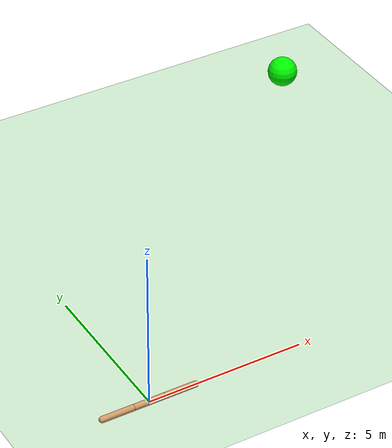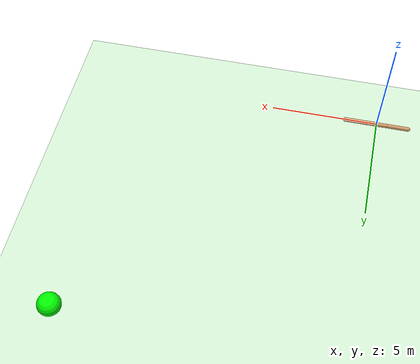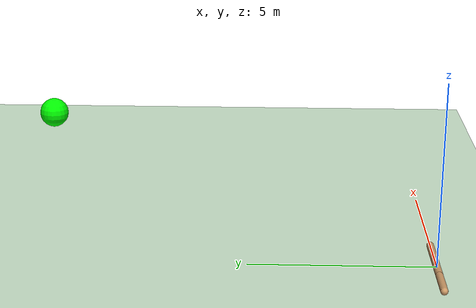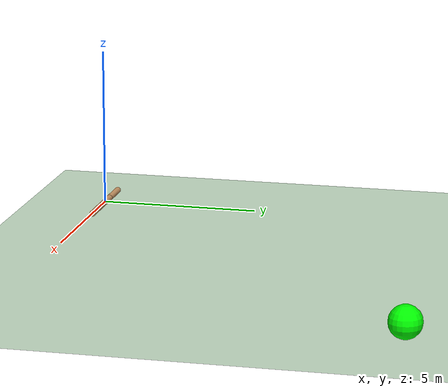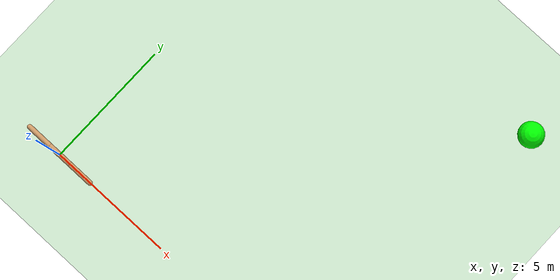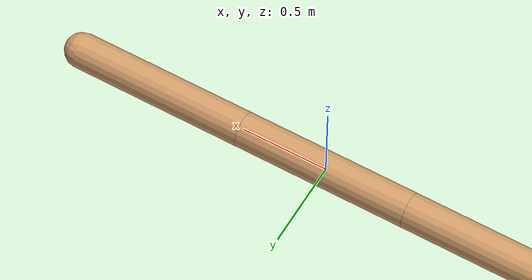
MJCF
<mujoco model="swimmer">
    <compiler angle="degree" coordinate="local" inertiafromgeom="true"/>
    <option collision="predefined" density="4000" integrator="RK4" timestep="0.01" viscosity="0.1"/>
    <default>
        <geom conaffinity="1" condim="1" contype="1" material="geom" rgba="0.8 0.6 .4 1"/>
        <joint armature='0.1'/>
    </default>
    <asset>
        <texture builtin="gradient" height="100" rgb1="1 1 1" rgb2="0 0 0" type="skybox" width="100"/>
        <texture builtin="flat" height="1278" mark="cross" markrgb="1 1 1" name="texgeom" random="0.01"
                 rgb1="0.8 0.6 0.4" rgb2="0.8 0.6 0.4" type="cube" width="127"/>
        <texture builtin="checker" height="100" name="texplane" rgb1="0 0 0" rgb2="0.8 0.8 0.8" type="2d" width="100"/>
        <material name="MatPlane" reflectance="0.5" shininess="1" specular="1" texrepeat="30 30" texture="texplane"/>
        <material name="geom" texture="texgeom" texuniform="true"/>
    </asset>
    <worldbody>
        <light cutoff="100" diffuse="1 1 1" dir="-0 0 -1.3" directional="true" exponent="1" pos="0 0 1.3"
               specular=".1 .1 .1"/>
        <geom conaffinity="1" condim="3" material="MatPlane" name="floor" pos="0 0 -0.1" rgba="0.8 0.9 0.8 1"
              size="40 40 0.1" type="plane"/>
        <!--  ================= SWIMMER ================= /-->
        <body name="torso" pos="0 0 0">
            <geom density="1000" fromto="1.5 0 0 0.5 0 0" size="0.1" type="capsule" name="torsogeom"/>
            <joint axis="1 0 0" name="slider1" pos="0 0 0" type="slide"/>
            <joint axis="0 1 0" name="slider2" pos="0 0 0" type="slide"/>
            <joint axis="0 0 1" name="rot" pos="0 0 0" type="hinge"/>
            <body name="mid" pos="0.5 0 0">
                <geom density="1000" fromto="0 0 0 -1 0 0" size="0.1" type="capsule" name="midgeom"/>
                <joint axis="0 0 1" limited="true" name="rot2" pos="0 0 0" range="-100 100" type="hinge"/>
                <body name="back" pos="-1 0 0">
                    <geom density="1000" fromto="0 0 0 -1 0 0" size="0.1" type="capsule" name="backgeom"/>
                    <joint axis="0 0 1" limited="true" name="rot3" pos="0 0 0" range="-100 100" type="hinge"/>
                </body>
            </body>
        </body>
        <geom name="pointbody" pos="12 12 0.5" size="0.5" type="sphere" rgba="0 1 0 1"/>
    </worldbody>
    <actuator>
        <motor ctrllimited="true" ctrlrange="-1 1" gear="3000.0" joint="rot2"/>
        <motor ctrllimited="true" ctrlrange="-1 1" gear="3000.0" joint="rot3"/>
    </actuator>
    <contact>
    </contact>

</mujoco>
